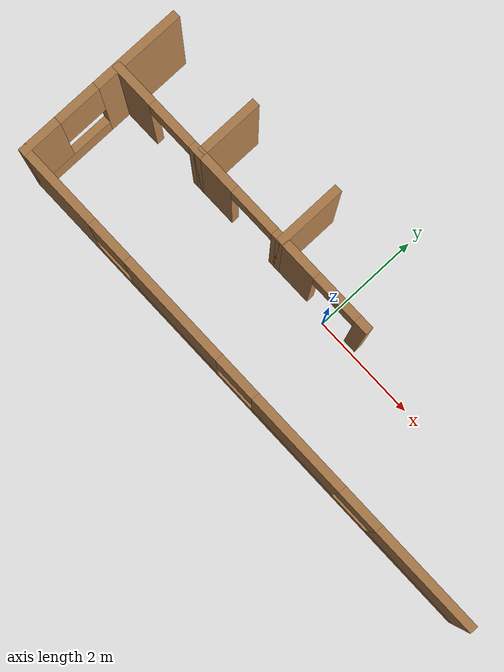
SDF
<sdf version="1.7">
 <model name="room">
  <link name="Wall_10">
   <pose>-2.14 0.1425 0 0 -0 0</pose>
   <visual name="Wall_10_Visual_0">
    <pose>-0.574862 0 1.25 0 -0 0</pose>
    <geometry><box><size>0.850276 0.15 2.5</size></box></geometry>
    <material>
     <script><uri>file://media/materials/scripts/gazebo.material</uri><name>Gazebo/Wood</name></script>
     <ambient>1 1 1 1</ambient>
     <shader type="pixel"/>
    </material>
    <meta><layer>0</layer></meta>
   </visual>
   <visual name="Wall_10_Visual_1">
    <pose>0.875138 0 1.25 0 -0 0</pose>
    <geometry><box><size>0.249724 0.15 2.5</size></box></geometry>
    <material>
     <script><uri>file://media/materials/scripts/gazebo.material</uri><name>Gazebo/Wood</name></script>
     <ambient>1 1 1 1</ambient>
     <shader type="pixel"/>
    </material>
    <meta><layer>0</layer></meta>
   </visual>
   <visual name="Wall_10_Visual_2">
    <pose>0.300276 0 2.25 0 -0 0</pose>
    <geometry><box><size>0.9 0.15 0.5</size></box></geometry>
    <material>
     <script><uri>file://media/materials/scripts/gazebo.material</uri><name>Gazebo/Wood</name></script>
     <ambient>1 1 1 1</ambient>
     <shader type="pixel"/>
    </material>
    <meta><layer>0</layer></meta>
   </visual>
   <collision name="Wall_10_Collision_0">
    <pose>-0.574862 0 1.25 0 -0 0</pose>
    <geometry><box><size>0.850276 0.15 2.5</size></box></geometry>
    <surface>
     <friction>
      <ode><mu>1</mu><mu2>1</mu2><fdir1>0 0 0</fdir1><slip1>0</slip1><slip2>0</slip2></ode>
      <torsional>
       <coefficient>1</coefficient>
       <patch_radius>0</patch_radius>
       <surface_radius>0</surface_radius>
       <use_patch_radius>1</use_patch_radius>
       <ode><slip>0</slip></ode>
      </torsional>
     </friction>
     <bounce><restitution_coefficient>0</restitution_coefficient><threshold>1e+06</threshold></bounce>
     <contact>
      <collide_without_contact>0</collide_without_contact>
      <collide_without_contact_bitmask>1</collide_without_contact_bitmask>
      <collide_bitmask>1</collide_bitmask>
      <ode>
       <soft_cfm>0</soft_cfm>
       <soft_erp>0.2</soft_erp>
       <kp>1e+13</kp>
       <kd>1</kd>
       <max_vel>0.01</max_vel>
       <min_depth>0</min_depth>
      </ode>
      <bullet>
       <split_impulse>1</split_impulse>
       <split_impulse_penetration_threshold>-0.01</split_impulse_penetration_threshold>
       <soft_cfm>0</soft_cfm>
       <soft_erp>0.2</soft_erp>
       <kp>1e+13</kp>
       <kd>1</kd>
      </bullet>
     </contact>
    </surface>
   </collision>
   <collision name="Wall_10_Collision_1">
    <pose>0.875138 0 1.25 0 -0 0</pose>
    <geometry><box><size>0.249724 0.15 2.5</size></box></geometry>
    <surface>
     <friction>
      <ode><mu>1</mu><mu2>1</mu2><fdir1>0 0 0</fdir1><slip1>0</slip1><slip2>0</slip2></ode>
      <torsional>
       <coefficient>1</coefficient>
       <patch_radius>0</patch_radius>
       <surface_radius>0</surface_radius>
       <use_patch_radius>1</use_patch_radius>
       <ode><slip>0</slip></ode>
      </torsional>
     </friction>
     <bounce><restitution_coefficient>0</restitution_coefficient><threshold>1e+06</threshold></bounce>
     <contact>
      <collide_without_contact>0</collide_without_contact>
      <collide_without_contact_bitmask>1</collide_without_contact_bitmask>
      <collide_bitmask>1</collide_bitmask>
      <ode>
       <soft_cfm>0</soft_cfm>
       <soft_erp>0.2</soft_erp>
       <kp>1e+13</kp>
       <kd>1</kd>
       <max_vel>0.01</max_vel>
       <min_depth>0</min_depth>
      </ode>
      <bullet>
       <split_impulse>1</split_impulse>
       <split_impulse_penetration_threshold>-0.01</split_impulse_penetration_threshold>
       <soft_cfm>0</soft_cfm>
       <soft_erp>0.2</soft_erp>
       <kp>1e+13</kp>
       <kd>1</kd>
      </bullet>
     </contact>
    </surface>
   </collision>
   <collision name="Wall_10_Collision_2">
    <pose>0.300276 0 2.25 0 -0 0</pose>
    <geometry><box><size>0.9 0.15 0.5</size></box></geometry>
    <surface>
     <friction>
      <ode><mu>1</mu><mu2>1</mu2><fdir1>0 0 0</fdir1><slip1>0</slip1><slip2>0</slip2></ode>
      <torsional>
       <coefficient>1</coefficient>
       <patch_radius>0</patch_radius>
       <surface_radius>0</surface_radius>
       <use_patch_radius>1</use_patch_radius>
       <ode><slip>0</slip></ode>
      </torsional>
     </friction>
     <bounce><restitution_coefficient>0</restitution_coefficient><threshold>1e+06</threshold></bounce>
     <contact>
      <collide_without_contact>0</collide_without_contact>
      <collide_without_contact_bitmask>1</collide_without_contact_bitmask>
      <collide_bitmask>1</collide_bitmask>
      <ode>
       <soft_cfm>0</soft_cfm>
       <soft_erp>0.2</soft_erp>
       <kp>1e+13</kp>
       <kd>1</kd>
       <max_vel>0.01</max_vel>
       <min_depth>0</min_depth>
      </ode>
      <bullet>
       <split_impulse>1</split_impulse>
       <split_impulse_penetration_threshold>-0.01</split_impulse_penetration_threshold>
       <soft_cfm>0</soft_cfm>
       <soft_erp>0.2</soft_erp>
       <kp>1e+13</kp>
       <kd>1</kd>
      </bullet>
     </contact>
    </surface>
   </collision>
  </link>
  <link name="Wall_11">
   <pose>-1.215 0.6925 0 0 -0 1.5708</pose>
   <visual name="Wall_11_Visual">
    <pose>0 0 1.25 0 -0 0</pose>
    <geometry><box><size>1.25 0.15 2.5</size></box></geometry>
    <material>
     <script><uri>file://media/materials/scripts/gazebo.material</uri><name>Gazebo/Wood</name></script>
     <ambient>1 1 1 1</ambient>
     <shader type="pixel"/>
    </material>
    <meta><layer>0</layer></meta>
   </visual>
   <collision name="Wall_11_Collision">
    <pose>0 0 1.25 0 -0 0</pose>
    <geometry><box><size>1.25 0.15 2.5</size></box></geometry>
    <surface>
     <friction>
      <ode><mu>1</mu><mu2>1</mu2><fdir1>0 0 0</fdir1><slip1>0</slip1><slip2>0</slip2></ode>
      <torsional>
       <coefficient>1</coefficient>
       <patch_radius>0</patch_radius>
       <surface_radius>0</surface_radius>
       <use_patch_radius>1</use_patch_radius>
       <ode><slip>0</slip></ode>
      </torsional>
     </friction>
     <bounce><restitution_coefficient>0</restitution_coefficient><threshold>1e+06</threshold></bounce>
     <contact>
      <collide_without_contact>0</collide_without_contact>
      <collide_without_contact_bitmask>1</collide_without_contact_bitmask>
      <collide_bitmask>1</collide_bitmask>
      <ode>
       <soft_cfm>0</soft_cfm>
       <soft_erp>0.2</soft_erp>
       <kp>1e+13</kp>
       <kd>1</kd>
       <max_vel>0.01</max_vel>
       <min_depth>0</min_depth>
      </ode>
      <bullet>
       <split_impulse>1</split_impulse>
       <split_impulse_penetration_threshold>-0.01</split_impulse_penetration_threshold>
       <soft_cfm>0</soft_cfm>
       <soft_erp>0.2</soft_erp>
       <kp>1e+13</kp>
       <kd>1</kd>
      </bullet>
     </contact>
    </surface>
   </collision>
  </link>
  <link name="Wall_13">
   <pose>-0.29 0.1425 0 0 -0 0</pose>
   <visual name="Wall_13_Visual_0">
    <pose>-0.579862 0 1.25 0 -0 0</pose>
    <geometry><box><size>0.840276 0.15 2.5</size></box></geometry>
    <material>
     <script><uri>file://media/materials/scripts/gazebo.material</uri><name>Gazebo/Wood</name></script>
     <ambient>1 1 1 1</ambient>
     <shader type="pixel"/>
    </material>
    <meta><layer>0</layer></meta>
   </visual>
   <visual name="Wall_13_Visual_1">
    <pose>0.870138 0 1.25 0 -0 0</pose>
    <geometry><box><size>0.259724 0.15 2.5</size></box></geometry>
    <material>
     <script><uri>file://media/materials/scripts/gazebo.material</uri><name>Gazebo/Wood</name></script>
     <ambient>1 1 1 1</ambient>
     <shader type="pixel"/>
    </material>
    <meta><layer>0</layer></meta>
   </visual>
   <visual name="Wall_13_Visual_2">
    <pose>0.290276 0 2.25 0 -0 0</pose>
    <geometry><box><size>0.9 0.15 0.5</size></box></geometry>
    <material>
     <script><uri>file://media/materials/scripts/gazebo.material</uri><name>Gazebo/Wood</name></script>
     <ambient>1 1 1 1</ambient>
     <shader type="pixel"/>
    </material>
    <meta><layer>0</layer></meta>
   </visual>
   <collision name="Wall_13_Collision_0">
    <pose>-0.579862 0 1.25 0 -0 0</pose>
    <geometry><box><size>0.840276 0.15 2.5</size></box></geometry>
    <surface>
     <friction>
      <ode><mu>1</mu><mu2>1</mu2><fdir1>0 0 0</fdir1><slip1>0</slip1><slip2>0</slip2></ode>
      <torsional>
       <coefficient>1</coefficient>
       <patch_radius>0</patch_radius>
       <surface_radius>0</surface_radius>
       <use_patch_radius>1</use_patch_radius>
       <ode><slip>0</slip></ode>
      </torsional>
     </friction>
     <bounce><restitution_coefficient>0</restitution_coefficient><threshold>1e+06</threshold></bounce>
     <contact>
      <collide_without_contact>0</collide_without_contact>
      <collide_without_contact_bitmask>1</collide_without_contact_bitmask>
      <collide_bitmask>1</collide_bitmask>
      <ode>
       <soft_cfm>0</soft_cfm>
       <soft_erp>0.2</soft_erp>
       <kp>1e+13</kp>
       <kd>1</kd>
       <max_vel>0.01</max_vel>
       <min_depth>0</min_depth>
      </ode>
      <bullet>
       <split_impulse>1</split_impulse>
       <split_impulse_penetration_threshold>-0.01</split_impulse_penetration_threshold>
       <soft_cfm>0</soft_cfm>
       <soft_erp>0.2</soft_erp>
       <kp>1e+13</kp>
       <kd>1</kd>
      </bullet>
     </contact>
    </surface>
   </collision>
   <collision name="Wall_13_Collision_2">
    <pose>0.290276 0 2.25 0 -0 0</pose>
    <geometry><box><size>0.9 0.15 0.5</size></box></geometry>
    <surface>
     <friction>
      <ode><mu>1</mu><mu2>1</mu2><fdir1>0 0 0</fdir1><slip1>0</slip1><slip2>0</slip2></ode>
      <torsional>
       <coefficient>1</coefficient>
       <patch_radius>0</patch_radius>
       <surface_radius>0</surface_radius>
       <use_patch_radius>1</use_patch_radius>
       <ode><slip>0</slip></ode>
      </torsional>
     </friction>
     <bounce><restitution_coefficient>0</restitution_coefficient><threshold>1e+06</threshold></bounce>
     <contact>
      <collide_without_contact>0</collide_without_contact>
      <collide_without_contact_bitmask>1</collide_without_contact_bitmask>
      <collide_bitmask>1</collide_bitmask>
      <ode>
       <soft_cfm>0</soft_cfm>
       <soft_erp>0.2</soft_erp>
       <kp>1e+13</kp>
       <kd>1</kd>
       <max_vel>0.01</max_vel>
       <min_depth>0</min_depth>
      </ode>
      <bullet>
       <split_impulse>1</split_impulse>
       <split_impulse_penetration_threshold>-0.01</split_impulse_penetration_threshold>
       <soft_cfm>0</soft_cfm>
       <soft_erp>0.2</soft_erp>
       <kp>1e+13</kp>
       <kd>1</kd>
      </bullet>
     </contact>
    </surface>
   </collision>
   <collision name="Wall_13_Collision_1">
    <pose>0.870138 0 1.25 0 -0 0</pose>
    <geometry><box><size>0.259724 0.15 2.5</size></box></geometry>
    <surface>
     <friction>
      <ode><mu>1</mu><mu2>1</mu2><fdir1>0 0 0</fdir1><slip1>0</slip1><slip2>0</slip2></ode>
      <torsional>
       <coefficient>1</coefficient>
       <patch_radius>0</patch_radius>
       <surface_radius>0</surface_radius>
       <use_patch_radius>1</use_patch_radius>
       <ode><slip>0</slip></ode>
      </torsional>
     </friction>
     <bounce><restitution_coefficient>0</restitution_coefficient><threshold>1e+06</threshold></bounce>
     <contact>
      <collide_without_contact>0</collide_without_contact>
      <collide_without_contact_bitmask>1</collide_without_contact_bitmask>
      <collide_bitmask>1</collide_bitmask>
      <ode>
       <soft_cfm>0</soft_cfm>
       <soft_erp>0.2</soft_erp>
       <kp>1e+13</kp>
       <kd>1</kd>
       <max_vel>0.01</max_vel>
       <min_depth>0</min_depth>
      </ode>
      <bullet>
       <split_impulse>1</split_impulse>
       <split_impulse_penetration_threshold>-0.01</split_impulse_penetration_threshold>
       <soft_cfm>0</soft_cfm>
       <soft_erp>0.2</soft_erp>
       <kp>1e+13</kp>
       <kd>1</kd>
      </bullet>
     </contact>
    </surface>
   </collision>
  </link>
  <link name="Wall_2">
   <pose>-0.01 -1.7975 0 0 -0 0</pose>
   <visual name="Wall_2_Visual_0">
    <pose>-4.19986 0 1.25 0 -0 0</pose>
    <geometry><box><size>1.60028 0.15 2.5</size></box></geometry>
    <material>
     <script><uri>file://media/materials/scripts/gazebo.material</uri><name>Gazebo/Wood</name></script>
     <ambient>1 1 1 1</ambient>
     <shader type="pixel"/>
    </material>
    <meta><layer>0</layer></meta>
   </visual>
   <visual name="Wall_2_Visual_1">
    <pose>0.800138 0 0.25 0 -0 0</pose>
    <geometry><box><size>8.39972 0.15 0.5</size></box></geometry>
    <material>
     <script><uri>file://media/materials/scripts/gazebo.material</uri><name>Gazebo/Wood</name></script>
     <ambient>1 1 1 1</ambient>
     <shader type="pixel"/>
    </material>
    <meta><layer>0</layer></meta>
   </visual>
   <visual name="Wall_2_Visual_2">
    <pose>-1.56972 0 1.5 0 -0 0</pose>
    <geometry><box><size>2.06 0.15 2</size></box></geometry>
    <material>
     <script><uri>file://media/materials/scripts/gazebo.material</uri><name>Gazebo/Wood</name></script>
     <ambient>1 1 1 1</ambient>
     <shader type="pixel"/>
    </material>
    <meta><layer>0</layer></meta>
   </visual>
   <visual name="Wall_2_Visual_3">
    <pose>1.21528 0 1.5 0 -0 0</pose>
    <geometry><box><size>1.91 0.15 2</size></box></geometry>
    <material>
     <script><uri>file://media/materials/scripts/gazebo.material</uri><name>Gazebo/Wood</name></script>
     <ambient>1 1 1 1</ambient>
     <shader type="pixel"/>
    </material>
    <meta><layer>0</layer></meta>
   </visual>
   <visual name="Wall_2_Visual_4">
    <pose>3.98514 0 1.5 0 -0 0</pose>
    <geometry><box><size>2.02972 0.15 2</size></box></geometry>
    <material>
     <script><uri>file://media/materials/scripts/gazebo.material</uri><name>Gazebo/Wood</name></script>
     <ambient>1 1 1 1</ambient>
     <shader type="pixel"/>
    </material>
    <meta><layer>0</layer></meta>
   </visual>
   <visual name="Wall_2_Visual_5">
    <pose>-2.99972 0 1.9 0 -0 0</pose>
    <geometry><box><size>0.8 0.15 1.2</size></box></geometry>
    <material>
     <script><uri>file://media/materials/scripts/gazebo.material</uri><name>Gazebo/Wood</name></script>
     <ambient>1 1 1 1</ambient>
     <shader type="pixel"/>
    </material>
    <meta><layer>0</layer></meta>
   </visual>
   <visual name="Wall_2_Visual_6">
    <pose>-0.139724 0 1.9 0 -0 0</pose>
    <geometry><box><size>0.8 0.15 1.2</size></box></geometry>
    <material>
     <script><uri>file://media/materials/scripts/gazebo.material</uri><name>Gazebo/Wood</name></script>
     <ambient>1 1 1 1</ambient>
     <shader type="pixel"/>
    </material>
    <meta><layer>0</layer></meta>
   </visual>
   <visual name="Wall_2_Visual_7">
    <pose>2.57028 0 1.9 0 -0 0</pose>
    <geometry><box><size>0.8 0.15 1.2</size></box></geometry>
    <material>
     <script><uri>file://media/materials/scripts/gazebo.material</uri><name>Gazebo/Wood</name></script>
     <ambient>1 1 1 1</ambient>
     <shader type="pixel"/>
    </material>
    <meta><layer>0</layer></meta>
   </visual>
   <collision name="Wall_2_Collision_0">
    <pose>-4.19986 0 1.25 0 -0 0</pose>
    <geometry><box><size>1.60028 0.15 2.5</size></box></geometry>
    <surface>
     <friction>
      <ode><mu>1</mu><mu2>1</mu2><fdir1>0 0 0</fdir1><slip1>0</slip1><slip2>0</slip2></ode>
      <torsional>
       <coefficient>1</coefficient>
       <patch_radius>0</patch_radius>
       <surface_radius>0</surface_radius>
       <use_patch_radius>1</use_patch_radius>
       <ode><slip>0</slip></ode>
      </torsional>
     </friction>
     <bounce><restitution_coefficient>0</restitution_coefficient><threshold>1e+06</threshold></bounce>
     <contact>
      <collide_without_contact>0</collide_without_contact>
      <collide_without_contact_bitmask>1</collide_without_contact_bitmask>
      <collide_bitmask>1</collide_bitmask>
      <ode>
       <soft_cfm>0</soft_cfm>
       <soft_erp>0.2</soft_erp>
       <kp>1e+13</kp>
       <kd>1</kd>
       <max_vel>0.01</max_vel>
       <min_depth>0</min_depth>
      </ode>
      <bullet>
       <split_impulse>1</split_impulse>
       <split_impulse_penetration_threshold>-0.01</split_impulse_penetration_threshold>
       <soft_cfm>0</soft_cfm>
       <soft_erp>0.2</soft_erp>
       <kp>1e+13</kp>
       <kd>1</kd>
      </bullet>
     </contact>
    </surface>
   </collision>
   <collision name="Wall_2_Collision_1">
    <pose>0.800138 0 0.25 0 -0 0</pose>
    <geometry><box><size>8.39972 0.15 0.5</size></box></geometry>
    <surface>
     <friction>
      <ode><mu>1</mu><mu2>1</mu2><fdir1>0 0 0</fdir1><slip1>0</slip1><slip2>0</slip2></ode>
      <torsional>
       <coefficient>1</coefficient>
       <patch_radius>0</patch_radius>
       <surface_radius>0</surface_radius>
       <use_patch_radius>1</use_patch_radius>
       <ode><slip>0</slip></ode>
      </torsional>
     </friction>
     <bounce><restitution_coefficient>0</restitution_coefficient><threshold>1e+06</threshold></bounce>
     <contact>
      <collide_without_contact>0</collide_without_contact>
      <collide_without_contact_bitmask>1</collide_without_contact_bitmask>
      <collide_bitmask>1</collide_bitmask>
      <ode>
       <soft_cfm>0</soft_cfm>
       <soft_erp>0.2</soft_erp>
       <kp>1e+13</kp>
       <kd>1</kd>
       <max_vel>0.01</max_vel>
       <min_depth>0</min_depth>
      </ode>
      <bullet>
       <split_impulse>1</split_impulse>
       <split_impulse_penetration_threshold>-0.01</split_impulse_penetration_threshold>
       <soft_cfm>0</soft_cfm>
       <soft_erp>0.2</soft_erp>
       <kp>1e+13</kp>
       <kd>1</kd>
      </bullet>
     </contact>
    </surface>
   </collision>
   <collision name="Wall_2_Collision_2">
    <pose>-1.56972 0 1.5 0 -0 0</pose>
    <geometry><box><size>2.06 0.15 2</size></box></geometry>
    <surface>
     <friction>
      <ode><mu>1</mu><mu2>1</mu2><fdir1>0 0 0</fdir1><slip1>0</slip1><slip2>0</slip2></ode>
      <torsional>
       <coefficient>1</coefficient>
       <patch_radius>0</patch_radius>
       <surface_radius>0</surface_radius>
       <use_patch_radius>1</use_patch_radius>
       <ode><slip>0</slip></ode>
      </torsional>
     </friction>
     <bounce><restitution_coefficient>0</restitution_coefficient><threshold>1e+06</threshold></bounce>
     <contact>
      <collide_without_contact>0</collide_without_contact>
      <collide_without_contact_bitmask>1</collide_without_contact_bitmask>
      <collide_bitmask>1</collide_bitmask>
      <ode>
       <soft_cfm>0</soft_cfm>
       <soft_erp>0.2</soft_erp>
       <kp>1e+13</kp>
       <kd>1</kd>
       <max_vel>0.01</max_vel>
       <min_depth>0</min_depth>
      </ode>
      <bullet>
       <split_impulse>1</split_impulse>
       <split_impulse_penetration_threshold>-0.01</split_impulse_penetration_threshold>
       <soft_cfm>0</soft_cfm>
       <soft_erp>0.2</soft_erp>
       <kp>1e+13</kp>
       <kd>1</kd>
      </bullet>
     </contact>
    </surface>
   </collision>
   <collision name="Wall_2_Collision_4">
    <pose>3.98514 0 1.5 0 -0 0</pose>
    <geometry><box><size>2.02972 0.15 2</size></box></geometry>
    <surface>
     <friction>
      <ode><mu>1</mu><mu2>1</mu2><fdir1>0 0 0</fdir1><slip1>0</slip1><slip2>0</slip2></ode>
      <torsional>
       <coefficient>1</coefficient>
       <patch_radius>0</patch_radius>
       <surface_radius>0</surface_radius>
       <use_patch_radius>1</use_patch_radius>
       <ode><slip>0</slip></ode>
      </torsional>
     </friction>
     <bounce><restitution_coefficient>0</restitution_coefficient><threshold>1e+06</threshold></bounce>
     <contact>
      <collide_without_contact>0</collide_without_contact>
      <collide_without_contact_bitmask>1</collide_without_contact_bitmask>
      <collide_bitmask>1</collide_bitmask>
      <ode>
       <soft_cfm>0</soft_cfm>
       <soft_erp>0.2</soft_erp>
       <kp>1e+13</kp>
       <kd>1</kd>
       <max_vel>0.01</max_vel>
       <min_depth>0</min_depth>
      </ode>
      <bullet>
       <split_impulse>1</split_impulse>
       <split_impulse_penetration_threshold>-0.01</split_impulse_penetration_threshold>
       <soft_cfm>0</soft_cfm>
       <soft_erp>0.2</soft_erp>
       <kp>1e+13</kp>
       <kd>1</kd>
      </bullet>
     </contact>
    </surface>
   </collision>
   <collision name="Wall_2_Collision_3">
    <pose>1.21528 0 1.5 0 -0 0</pose>
    <geometry><box><size>1.91 0.15 2</size></box></geometry>
    <surface>
     <friction>
      <ode><mu>1</mu><mu2>1</mu2><fdir1>0 0 0</fdir1><slip1>0</slip1><slip2>0</slip2></ode>
      <torsional>
       <coefficient>1</coefficient>
       <patch_radius>0</patch_radius>
       <surface_radius>0</surface_radius>
       <use_patch_radius>1</use_patch_radius>
       <ode><slip>0</slip></ode>
      </torsional>
     </friction>
     <bounce><restitution_coefficient>0</restitution_coefficient><threshold>1e+06</threshold></bounce>
     <contact>
      <collide_without_contact>0</collide_without_contact>
      <collide_without_contact_bitmask>1</collide_without_contact_bitmask>
      <collide_bitmask>1</collide_bitmask>
      <ode>
       <soft_cfm>0</soft_cfm>
       <soft_erp>0.2</soft_erp>
       <kp>1e+13</kp>
       <kd>1</kd>
       <max_vel>0.01</max_vel>
       <min_depth>0</min_depth>
      </ode>
      <bullet>
       <split_impulse>1</split_impulse>
       <split_impulse_penetration_threshold>-0.01</split_impulse_penetration_threshold>
       <soft_cfm>0</soft_cfm>
       <soft_erp>0.2</soft_erp>
       <kp>1e+13</kp>
       <kd>1</kd>
      </bullet>
     </contact>
    </surface>
   </collision>
   <collision name="Wall_2_Collision_5">
    <pose>-2.99972 0 1.9 0 -0 0</pose>
    <geometry><box><size>0.8 0.15 1.2</size></box></geometry>
    <surface>
     <friction>
      <ode><mu>1</mu><mu2>1</mu2><fdir1>0 0 0</fdir1><slip1>0</slip1><slip2>0</slip2></ode>
      <torsional>
       <coefficient>1</coefficient>
       <patch_radius>0</patch_radius>
       <surface_radius>0</surface_radius>
       <use_patch_radius>1</use_patch_radius>
       <ode><slip>0</slip></ode>
      </torsional>
     </friction>
     <bounce><restitution_coefficient>0</restitution_coefficient><threshold>1e+06</threshold></bounce>
     <contact>
      <collide_without_contact>0</collide_without_contact>
      <collide_without_contact_bitmask>1</collide_without_contact_bitmask>
      <collide_bitmask>1</collide_bitmask>
      <ode>
       <soft_cfm>0</soft_cfm>
       <soft_erp>0.2</soft_erp>
       <kp>1e+13</kp>
       <kd>1</kd>
       <max_vel>0.01</max_vel>
       <min_depth>0</min_depth>
      </ode>
      <bullet>
       <split_impulse>1</split_impulse>
       <split_impulse_penetration_threshold>-0.01</split_impulse_penetration_threshold>
       <soft_cfm>0</soft_cfm>
       <soft_erp>0.2</soft_erp>
       <kp>1e+13</kp>
       <kd>1</kd>
      </bullet>
     </contact>
    </surface>
   </collision>
   <collision name="Wall_2_Collision_6">
    <pose>-0.139724 0 1.9 0 -0 0</pose>
    <geometry><box><size>0.8 0.15 1.2</size></box></geometry>
    <surface>
     <friction>
      <ode><mu>1</mu><mu2>1</mu2><fdir1>0 0 0</fdir1><slip1>0</slip1><slip2>0</slip2></ode>
      <torsional>
       <coefficient>1</coefficient>
       <patch_radius>0</patch_radius>
       <surface_radius>0</surface_radius>
       <use_patch_radius>1</use_patch_radius>
       <ode><slip>0</slip></ode>
      </torsional>
     </friction>
     <bounce><restitution_coefficient>0</restitution_coefficient><threshold>1e+06</threshold></bounce>
     <contact>
      <collide_without_contact>0</collide_without_contact>
      <collide_without_contact_bitmask>1</collide_without_contact_bitmask>
      <collide_bitmask>1</collide_bitmask>
      <ode>
       <soft_cfm>0</soft_cfm>
       <soft_erp>0.2</soft_erp>
       <kp>1e+13</kp>
       <kd>1</kd>
       <max_vel>0.01</max_vel>
       <min_depth>0</min_depth>
      </ode>
      <bullet>
       <split_impulse>1</split_impulse>
       <split_impulse_penetration_threshold>-0.01</split_impulse_penetration_threshold>
       <soft_cfm>0</soft_cfm>
       <soft_erp>0.2</soft_erp>
       <kp>1e+13</kp>
       <kd>1</kd>
      </bullet>
     </contact>
    </surface>
   </collision>
   <collision name="Wall_2_Collision_7">
    <pose>2.57028 0 1.9 0 -0 0</pose>
    <geometry><box><size>0.8 0.15 1.2</size></box></geometry>
    <surface>
     <friction>
      <ode><mu>1</mu><mu2>1</mu2><fdir1>0 0 0</fdir1><slip1>0</slip1><slip2>0</slip2></ode>
      <torsional>
       <coefficient>1</coefficient>
       <patch_radius>0</patch_radius>
       <surface_radius>0</surface_radius>
       <use_patch_radius>1</use_patch_radius>
       <ode><slip>0</slip></ode>
      </torsional>
     </friction>
     <bounce><restitution_coefficient>0</restitution_coefficient><threshold>1e+06</threshold></bounce>
     <contact>
      <collide_without_contact>0</collide_without_contact>
      <collide_without_contact_bitmask>1</collide_without_contact_bitmask>
      <collide_bitmask>1</collide_bitmask>
      <ode>
       <soft_cfm>0</soft_cfm>
       <soft_erp>0.2</soft_erp>
       <kp>1e+13</kp>
       <kd>1</kd>
       <max_vel>0.01</max_vel>
       <min_depth>0</min_depth>
      </ode>
      <bullet>
       <split_impulse>1</split_impulse>
       <split_impulse_penetration_threshold>-0.01</split_impulse_penetration_threshold>
       <soft_cfm>0</soft_cfm>
       <soft_erp>0.2</soft_erp>
       <kp>1e+13</kp>
       <kd>1</kd>
      </bullet>
     </contact>
    </surface>
   </collision>
  </link>
  <link name="Wall_5">
   <pose>-4.935 -0.2475 0 0 0 -1.5708</pose>
   <visual name="Wall_5_Visual_0">
    <pose>-0.776032 0 1.25 0 -0 0</pose>
    <geometry><box><size>1.69794 0.15 2.5</size></box></geometry>
    <material>
     <script><uri>file://media/materials/scripts/gazebo.material</uri><name>Gazebo/Wood</name></script>
     <ambient>1 1 1 1</ambient>
     <shader type="pixel"/>
    </material>
    <meta><layer>0</layer></meta>
   </visual>
   <visual name="Wall_5_Visual_1">
    <pose>0.848968 0 0.25 0 -0 0</pose>
    <geometry><box><size>1.55206 0.15 0.5</size></box></geometry>
    <material>
     <script><uri>file://media/materials/scripts/gazebo.material</uri><name>Gazebo/Wood</name></script>
     <ambient>1 1 1 1</ambient>
     <shader type="pixel"/>
    </material>
    <meta><layer>0</layer></meta>
   </visual>
   <visual name="Wall_5_Visual_2">
    <pose>1.24897 0 1.5 0 -0 0</pose>
    <geometry><box><size>0.752063 0.15 2</size></box></geometry>
    <material>
     <script><uri>file://media/materials/scripts/gazebo.material</uri><name>Gazebo/Wood</name></script>
     <ambient>1 1 1 1</ambient>
     <shader type="pixel"/>
    </material>
    <meta><layer>0</layer></meta>
   </visual>
   <visual name="Wall_5_Visual_3">
    <pose>0.472937 0 1.9 0 -0 0</pose>
    <geometry><box><size>0.8 0.15 1.2</size></box></geometry>
    <material>
     <script><uri>file://media/materials/scripts/gazebo.material</uri><name>Gazebo/Wood</name></script>
     <ambient>1 1 1 1</ambient>
     <shader type="pixel"/>
    </material>
    <meta><layer>0</layer></meta>
   </visual>
   <collision name="Wall_5_Collision_0">
    <pose>-0.776032 0 1.25 0 -0 0</pose>
    <geometry><box><size>1.69794 0.15 2.5</size></box></geometry>
    <surface>
     <friction>
      <ode><mu>1</mu><mu2>1</mu2><fdir1>0 0 0</fdir1><slip1>0</slip1><slip2>0</slip2></ode>
      <torsional>
       <coefficient>1</coefficient>
       <patch_radius>0</patch_radius>
       <surface_radius>0</surface_radius>
       <use_patch_radius>1</use_patch_radius>
       <ode><slip>0</slip></ode>
      </torsional>
     </friction>
     <bounce><restitution_coefficient>0</restitution_coefficient><threshold>1e+06</threshold></bounce>
     <contact>
      <collide_without_contact>0</collide_without_contact>
      <collide_without_contact_bitmask>1</collide_without_contact_bitmask>
      <collide_bitmask>1</collide_bitmask>
      <ode>
       <soft_cfm>0</soft_cfm>
       <soft_erp>0.2</soft_erp>
       <kp>1e+13</kp>
       <kd>1</kd>
       <max_vel>0.01</max_vel>
       <min_depth>0</min_depth>
      </ode>
      <bullet>
       <split_impulse>1</split_impulse>
       <split_impulse_penetration_threshold>-0.01</split_impulse_penetration_threshold>
       <soft_cfm>0</soft_cfm>
       <soft_erp>0.2</soft_erp>
       <kp>1e+13</kp>
       <kd>1</kd>
      </bullet>
     </contact>
    </surface>
   </collision>
   <collision name="Wall_5_Collision_1">
    <pose>0.848968 0 0.25 0 -0 0</pose>
    <geometry><box><size>1.55206 0.15 0.5</size></box></geometry>
    <surface>
     <friction>
      <ode><mu>1</mu><mu2>1</mu2><fdir1>0 0 0</fdir1><slip1>0</slip1><slip2>0</slip2></ode>
      <torsional>
       <coefficient>1</coefficient>
       <patch_radius>0</patch_radius>
       <surface_radius>0</surface_radius>
       <use_patch_radius>1</use_patch_radius>
       <ode><slip>0</slip></ode>
      </torsional>
     </friction>
     <bounce><restitution_coefficient>0</restitution_coefficient><threshold>1e+06</threshold></bounce>
     <contact>
      <collide_without_contact>0</collide_without_contact>
      <collide_without_contact_bitmask>1</collide_without_contact_bitmask>
      <collide_bitmask>1</collide_bitmask>
      <ode>
       <soft_cfm>0</soft_cfm>
       <soft_erp>0.2</soft_erp>
       <kp>1e+13</kp>
       <kd>1</kd>
       <max_vel>0.01</max_vel>
       <min_depth>0</min_depth>
      </ode>
      <bullet>
       <split_impulse>1</split_impulse>
       <split_impulse_penetration_threshold>-0.01</split_impulse_penetration_threshold>
       <soft_cfm>0</soft_cfm>
       <soft_erp>0.2</soft_erp>
       <kp>1e+13</kp>
       <kd>1</kd>
      </bullet>
     </contact>
    </surface>
   </collision>
   <collision name="Wall_5_Collision_3">
    <pose>0.472937 0 1.9 0 -0 0</pose>
    <geometry><box><size>0.8 0.15 1.2</size></box></geometry>
    <surface>
     <friction>
      <ode><mu>1</mu><mu2>1</mu2><fdir1>0 0 0</fdir1><slip1>0</slip1><slip2>0</slip2></ode>
      <torsional>
       <coefficient>1</coefficient>
       <patch_radius>0</patch_radius>
       <surface_radius>0</surface_radius>
       <use_patch_radius>1</use_patch_radius>
       <ode><slip>0</slip></ode>
      </torsional>
     </friction>
     <bounce><restitution_coefficient>0</restitution_coefficient><threshold>1e+06</threshold></bounce>
     <contact>
      <collide_without_contact>0</collide_without_contact>
      <collide_without_contact_bitmask>1</collide_without_contact_bitmask>
      <collide_bitmask>1</collide_bitmask>
      <ode>
       <soft_cfm>0</soft_cfm>
       <soft_erp>0.2</soft_erp>
       <kp>1e+13</kp>
       <kd>1</kd>
       <max_vel>0.01</max_vel>
       <min_depth>0</min_depth>
      </ode>
      <bullet>
       <split_impulse>1</split_impulse>
       <split_impulse_penetration_threshold>-0.01</split_impulse_penetration_threshold>
       <soft_cfm>0</soft_cfm>
       <soft_erp>0.2</soft_erp>
       <kp>1e+13</kp>
       <kd>1</kd>
      </bullet>
     </contact>
    </surface>
   </collision>
   <collision name="Wall_5_Collision_2">
    <pose>1.24897 0 1.5 0 -0 0</pose>
    <geometry><box><size>0.752063 0.15 2</size></box></geometry>
    <surface>
     <friction>
      <ode><mu>1</mu><mu2>1</mu2><fdir1>0 0 0</fdir1><slip1>0</slip1><slip2>0</slip2></ode>
      <torsional>
       <coefficient>1</coefficient>
       <patch_radius>0</patch_radius>
       <surface_radius>0</surface_radius>
       <use_patch_radius>1</use_patch_radius>
       <ode><slip>0</slip></ode>
      </torsional>
     </friction>
     <bounce><restitution_coefficient>0</restitution_coefficient><threshold>1e+06</threshold></bounce>
     <contact>
      <collide_without_contact>0</collide_without_contact>
      <collide_without_contact_bitmask>1</collide_without_contact_bitmask>
      <collide_bitmask>1</collide_bitmask>
      <ode>
       <soft_cfm>0</soft_cfm>
       <soft_erp>0.2</soft_erp>
       <kp>1e+13</kp>
       <kd>1</kd>
       <max_vel>0.01</max_vel>
       <min_depth>0</min_depth>
      </ode>
      <bullet>
       <split_impulse>1</split_impulse>
       <split_impulse_penetration_threshold>-0.01</split_impulse_penetration_threshold>
       <soft_cfm>0</soft_cfm>
       <soft_erp>0.2</soft_erp>
       <kp>1e+13</kp>
       <kd>1</kd>
      </bullet>
     </contact>
    </surface>
   </collision>
  </link>
  <link name="Wall_7">
   <pose>-3.99 0.1425 0 0 -0 0</pose>
   <visual name="Wall_7_Visual_0">
    <pose>-0.579862 0 1.25 0 -0 0</pose>
    <geometry><box><size>0.840276 0.15 2.5</size></box></geometry>
    <material>
     <script><uri>file://media/materials/scripts/gazebo.material</uri><name>Gazebo/Wood</name></script>
     <ambient>1 1 1 1</ambient>
     <shader type="pixel"/>
    </material>
    <meta><layer>0</layer></meta>
   </visual>
   <visual name="Wall_7_Visual_1">
    <pose>0.870138 0 1.25 0 -0 0</pose>
    <geometry><box><size>0.259724 0.15 2.5</size></box></geometry>
    <material>
     <script><uri>file://media/materials/scripts/gazebo.material</uri><name>Gazebo/Wood</name></script>
     <ambient>1 1 1 1</ambient>
     <shader type="pixel"/>
    </material>
    <meta><layer>0</layer></meta>
   </visual>
   <visual name="Wall_7_Visual_2">
    <pose>0.290276 0 2.25 0 -0 0</pose>
    <geometry><box><size>0.9 0.15 0.5</size></box></geometry>
    <material>
     <script><uri>file://media/materials/scripts/gazebo.material</uri><name>Gazebo/Wood</name></script>
     <ambient>1 1 1 1</ambient>
     <shader type="pixel"/>
    </material>
    <meta><layer>0</layer></meta>
   </visual>
   <collision name="Wall_7_Collision_0">
    <pose>-0.579862 0 1.25 0 -0 0</pose>
    <geometry><box><size>0.840276 0.15 2.5</size></box></geometry>
    <surface>
     <friction>
      <ode><mu>1</mu><mu2>1</mu2><fdir1>0 0 0</fdir1><slip1>0</slip1><slip2>0</slip2></ode>
      <torsional>
       <coefficient>1</coefficient>
       <patch_radius>0</patch_radius>
       <surface_radius>0</surface_radius>
       <use_patch_radius>1</use_patch_radius>
       <ode><slip>0</slip></ode>
      </torsional>
     </friction>
     <bounce><restitution_coefficient>0</restitution_coefficient><threshold>1e+06</threshold></bounce>
     <contact>
      <collide_without_contact>0</collide_without_contact>
      <collide_without_contact_bitmask>1</collide_without_contact_bitmask>
      <collide_bitmask>1</collide_bitmask>
      <ode>
       <soft_cfm>0</soft_cfm>
       <soft_erp>0.2</soft_erp>
       <kp>1e+13</kp>
       <kd>1</kd>
       <max_vel>0.01</max_vel>
       <min_depth>0</min_depth>
      </ode>
      <bullet>
       <split_impulse>1</split_impulse>
       <split_impulse_penetration_threshold>-0.01</split_impulse_penetration_threshold>
       <soft_cfm>0</soft_cfm>
       <soft_erp>0.2</soft_erp>
       <kp>1e+13</kp>
       <kd>1</kd>
      </bullet>
     </contact>
    </surface>
   </collision>
   <collision name="Wall_7_Collision_1">
    <pose>0.870138 0 1.25 0 -0 0</pose>
    <geometry><box><size>0.259724 0.15 2.5</size></box></geometry>
    <surface>
     <friction>
      <ode><mu>1</mu><mu2>1</mu2><fdir1>0 0 0</fdir1><slip1>0</slip1><slip2>0</slip2></ode>
      <torsional>
       <coefficient>1</coefficient>
       <patch_radius>0</patch_radius>
       <surface_radius>0</surface_radius>
       <use_patch_radius>1</use_patch_radius>
       <ode><slip>0</slip></ode>
      </torsional>
     </friction>
     <bounce><restitution_coefficient>0</restitution_coefficient><threshold>1e+06</threshold></bounce>
     <contact>
      <collide_without_contact>0</collide_without_contact>
      <collide_without_contact_bitmask>1</collide_without_contact_bitmask>
      <collide_bitmask>1</collide_bitmask>
      <ode>
       <soft_cfm>0</soft_cfm>
       <soft_erp>0.2</soft_erp>
       <kp>1e+13</kp>
       <kd>1</kd>
       <max_vel>0.01</max_vel>
       <min_depth>0</min_depth>
      </ode>
      <bullet>
       <split_impulse>1</split_impulse>
       <split_impulse_penetration_threshold>-0.01</split_impulse_penetration_threshold>
       <soft_cfm>0</soft_cfm>
       <soft_erp>0.2</soft_erp>
       <kp>1e+13</kp>
       <kd>1</kd>
      </bullet>
     </contact>
    </surface>
   </collision>
   <collision name="Wall_7_Collision_2">
    <pose>0.290276 0 2.25 0 -0 0</pose>
    <geometry><box><size>0.9 0.15 0.5</size></box></geometry>
    <surface>
     <friction>
      <ode><mu>1</mu><mu2>1</mu2><fdir1>0 0 0</fdir1><slip1>0</slip1><slip2>0</slip2></ode>
      <torsional>
       <coefficient>1</coefficient>
       <patch_radius>0</patch_radius>
       <surface_radius>0</surface_radius>
       <use_patch_radius>1</use_patch_radius>
       <ode><slip>0</slip></ode>
      </torsional>
     </friction>
     <bounce><restitution_coefficient>0</restitution_coefficient><threshold>1e+06</threshold></bounce>
     <contact>
      <collide_without_contact>0</collide_without_contact>
      <collide_without_contact_bitmask>1</collide_without_contact_bitmask>
      <collide_bitmask>1</collide_bitmask>
      <ode>
       <soft_cfm>0</soft_cfm>
       <soft_erp>0.2</soft_erp>
       <kp>1e+13</kp>
       <kd>1</kd>
       <max_vel>0.01</max_vel>
       <min_depth>0</min_depth>
      </ode>
      <bullet>
       <split_impulse>1</split_impulse>
       <split_impulse_penetration_threshold>-0.01</split_impulse_penetration_threshold>
       <soft_cfm>0</soft_cfm>
       <soft_erp>0.2</soft_erp>
       <kp>1e+13</kp>
       <kd>1</kd>
      </bullet>
     </contact>
    </surface>
   </collision>
  </link>
  <link name="Wall_8">
   <pose>-3.065 0.6925 0 0 -0 1.5708</pose>
   <visual name="Wall_8_Visual">
    <pose>0 0 1.25 0 -0 0</pose>
    <geometry><box><size>1.25 0.15 2.5</size></box></geometry>
    <material>
     <script><uri>file://media/materials/scripts/gazebo.material</uri><name>Gazebo/Wood</name></script>
     <ambient>1 1 1 1</ambient>
     <shader type="pixel"/>
    </material>
    <meta><layer>0</layer></meta>
   </visual>
   <collision name="Wall_8_Collision">
    <pose>0 0 1.25 0 -0 0</pose>
    <geometry><box><size>1.25 0.15 2.5</size></box></geometry>
    <surface>
     <friction>
      <ode><mu>1</mu><mu2>1</mu2><fdir1>0 0 0</fdir1><slip1>0</slip1><slip2>0</slip2></ode>
      <torsional>
       <coefficient>1</coefficient>
       <patch_radius>0</patch_radius>
       <surface_radius>0</surface_radius>
       <use_patch_radius>1</use_patch_radius>
       <ode><slip>0</slip></ode>
      </torsional>
     </friction>
     <bounce><restitution_coefficient>0</restitution_coefficient><threshold>1e+06</threshold></bounce>
     <contact>
      <collide_without_contact>0</collide_without_contact>
      <collide_without_contact_bitmask>1</collide_without_contact_bitmask>
      <collide_bitmask>1</collide_bitmask>
      <ode>
       <soft_cfm>0</soft_cfm>
       <soft_erp>0.2</soft_erp>
       <kp>1e+13</kp>
       <kd>1</kd>
       <max_vel>0.01</max_vel>
       <min_depth>0</min_depth>
      </ode>
      <bullet>
       <split_impulse>1</split_impulse>
       <split_impulse_penetration_threshold>-0.01</split_impulse_penetration_threshold>
       <soft_cfm>0</soft_cfm>
       <soft_erp>0.2</soft_erp>
       <kp>1e+13</kp>
       <kd>1</kd>
      </bullet>
     </contact>
    </surface>
   </collision>
  </link>
  <static>1</static>
 </model>
</sdf>
